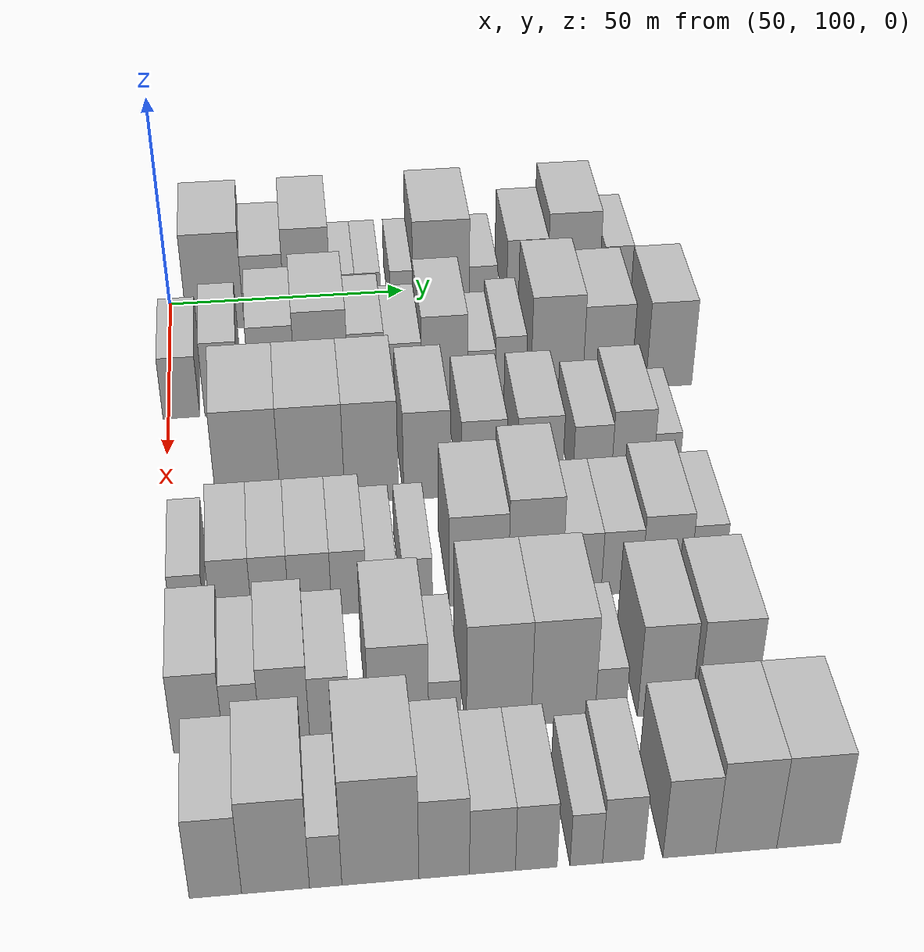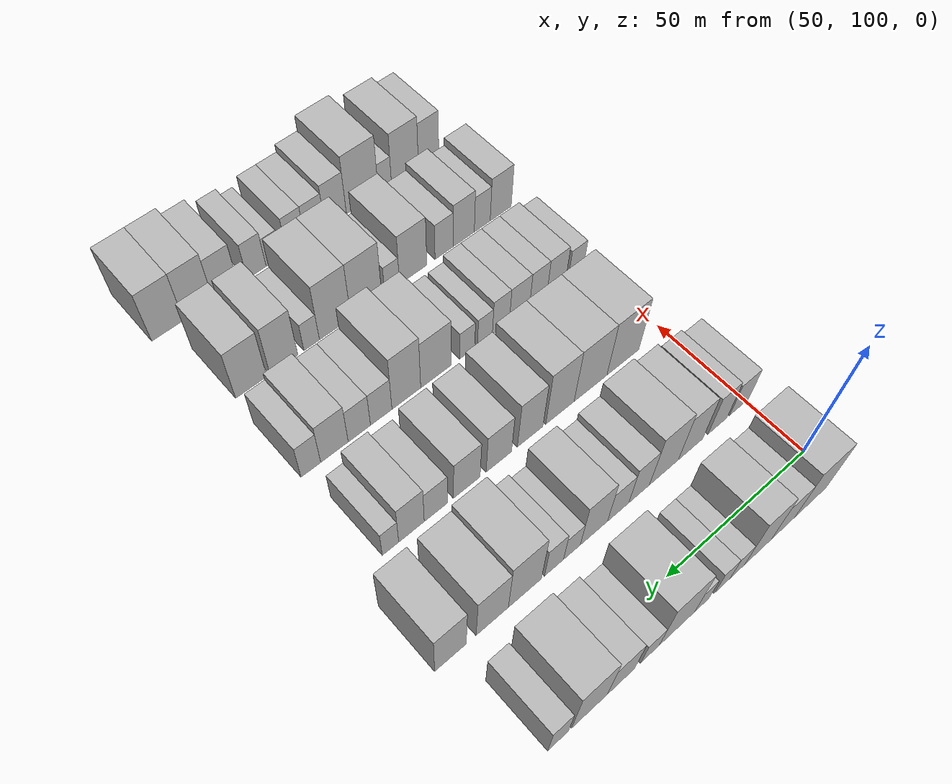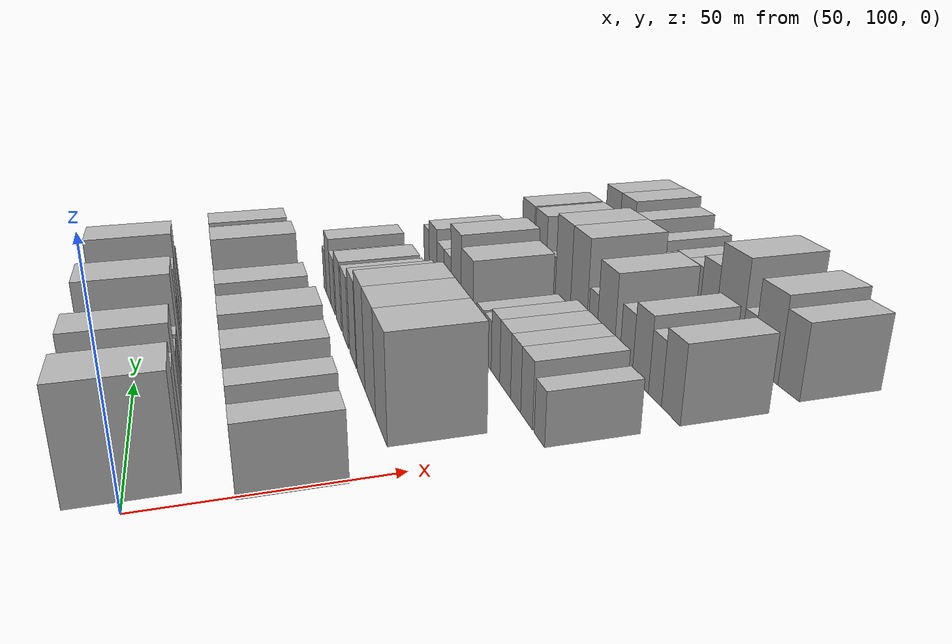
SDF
<sdf version="1.6">
 <world name="default">
  <model name="building_71">
   <static>1</static>
   <pose>50.0000 109.6856 0 0.000000 0.000000 0.000000</pose>
   <link name="link">
    <pose>0 0 12.00 0 0 0</pose>
    <collision name="collision"><geometry><box><size>20.0000 11.9349 24.0000</size></box></geometry></collision>
    <visual name="visual">
     <cast_shadows>0</cast_shadows>
     <geometry><box><size>20.0000 11.9349 24.0000</size></box></geometry>
     <material>
      <script>
       <uri>model://HANNAS_wall/materials/scripts</uri>
       <uri>model://HANNAS_wall/materials/textures</uri>
       <name>vrc/HANNAS_wall</name>
      </script>
     </material>
    </visual>
   </link>
  </model>
  <model name="building_72">
   <static>1</static>
   <pose>50.0000 119.9899 0 0.000000 0.000000 0.000000</pose>
   <link name="link">
    <pose>0 0 9.00 0 0 0</pose>
    <collision name="collision"><geometry><box><size>20.0000 8.6737 18.0000</size></box></geometry></collision>
    <visual name="visual">
     <cast_shadows>0</cast_shadows>
     <geometry><box><size>20.0000 8.6737 18.0000</size></box></geometry>
     <material>
      <script>
       <uri>model://HANNAS_wall/materials/scripts</uri>
       <uri>model://HANNAS_wall/materials/textures</uri>
       <name>vrc/HANNAS_wall</name>
      </script>
     </material>
    </visual>
   </link>
  </model>
  <model name="building_73">
   <static>1</static>
   <pose>50.0000 129.1986 0 0.000000 0.000000 0.000000</pose>
   <link name="link">
    <pose>0 0 12.00 0 0 0</pose>
    <collision name="collision"><geometry><box><size>20.0000 9.7438 24.0000</size></box></geometry></collision>
    <visual name="visual">
     <cast_shadows>0</cast_shadows>
     <geometry><box><size>20.0000 9.7438 24.0000</size></box></geometry>
     <material>
      <script>
       <uri>model://HANNAS_wall/materials/scripts</uri>
       <uri>model://HANNAS_wall/materials/textures</uri>
       <name>vrc/HANNAS_wall</name>
      </script>
     </material>
    </visual>
   </link>
  </model>
  <model name="building_74">
   <static>1</static>
   <pose>50.0000 136.6363 0 0.000000 0.000000 0.000000</pose>
   <link name="link">
    <pose>0 0 6.00 0 0 0</pose>
    <collision name="collision"><geometry><box><size>20.0000 5.1316 12.0000</size></box></geometry></collision>
    <visual name="visual">
     <cast_shadows>0</cast_shadows>
     <geometry><box><size>20.0000 5.1316 12.0000</size></box></geometry>
     <material>
      <script>
       <uri>model://HANNAS_wall/materials/scripts</uri>
       <uri>model://HANNAS_wall/materials/textures</uri>
       <name>vrc/HANNAS_wall</name>
      </script>
     </material>
    </visual>
   </link>
  </model>
  <model name="building_75">
   <static>1</static>
   <pose>50.0000 141.8897 0 0.000000 0.000000 0.000000</pose>
   <link name="link">
    <pose>0 0 6.00 0 0 0</pose>
    <collision name="collision"><geometry><box><size>20.0000 5.3753 12.0000</size></box></geometry></collision>
    <visual name="visual">
     <cast_shadows>0</cast_shadows>
     <geometry><box><size>20.0000 5.3753 12.0000</size></box></geometry>
     <material>
      <script>
       <uri>model://HANNAS_wall/materials/scripts</uri>
       <uri>model://HANNAS_wall/materials/textures</uri>
       <name>vrc/HANNAS_wall</name>
      </script>
     </material>
    </visual>
   </link>
  </model>
  <model name="building_76">
   <static>1</static>
   <pose>50.0000 148.9873 0 0.000000 0.000000 0.000000</pose>
   <link name="link">
    <pose>0 0 6.00 0 0 0</pose>
    <collision name="collision"><geometry><box><size>20.0000 4.8198 12.0000</size></box></geometry></collision>
    <visual name="visual">
     <cast_shadows>0</cast_shadows>
     <geometry><box><size>20.0000 4.8198 12.0000</size></box></geometry>
     <material>
      <script>
       <uri>model://HANNAS_wall/materials/scripts</uri>
       <uri>model://HANNAS_wall/materials/textures</uri>
       <name>vrc/HANNAS_wall</name>
      </script>
     </material>
    </visual>
   </link>
  </model>
  <model name="building_77">
   <static>1</static>
   <pose>50.0000 157.3818 0 0.000000 0.000000 0.000000</pose>
   <link name="link">
    <pose>0 0 12.00 0 0 0</pose>
    <collision name="collision"><geometry><box><size>20.0000 11.9692 24.0000</size></box></geometry></collision>
    <visual name="visual">
     <cast_shadows>0</cast_shadows>
     <geometry><box><size>20.0000 11.9692 24.0000</size></box></geometry>
     <material>
      <script>
       <uri>model://HANNAS_wall/materials/scripts</uri>
       <uri>model://HANNAS_wall/materials/textures</uri>
       <name>vrc/HANNAS_wall</name>
      </script>
     </material>
    </visual>
   </link>
  </model>
  <model name="building_78">
   <static>1</static>
   <pose>50.0000 166.3510 0 0.000000 0.000000 0.000000</pose>
   <link name="link">
    <pose>0 0 6.00 0 0 0</pose>
    <collision name="collision"><geometry><box><size>20.0000 5.9692 12.0000</size></box></geometry></collision>
    <visual name="visual">
     <cast_shadows>0</cast_shadows>
     <geometry><box><size>20.0000 5.9692 12.0000</size></box></geometry>
     <material>
      <script>
       <uri>model://HANNAS_wall/materials/scripts</uri>
       <uri>model://HANNAS_wall/materials/textures</uri>
       <name>vrc/HANNAS_wall</name>
      </script>
     </material>
    </visual>
   </link>
  </model>
  <model name="building_79">
   <static>1</static>
   <pose>50.0000 175.6624 0 0.000000 0.000000 0.000000</pose>
   <link name="link">
    <pose>0 0 9.00 0 0 0</pose>
    <collision name="collision"><geometry><box><size>20.0000 8.6537 18.0000</size></box></geometry></collision>
    <visual name="visual">
     <cast_shadows>0</cast_shadows>
     <geometry><box><size>20.0000 8.6537 18.0000</size></box></geometry>
     <material>
      <script>
       <uri>model://HANNAS_wall/materials/scripts</uri>
       <uri>model://HANNAS_wall/materials/textures</uri>
       <name>vrc/HANNAS_wall</name>
      </script>
     </material>
    </visual>
   </link>
  </model>
  <model name="building_80">
   <static>1</static>
   <pose>50.0000 185.5271 0 0.000000 0.000000 0.000000</pose>
   <link name="link">
    <pose>0 0 12.00 0 0 0</pose>
    <collision name="collision"><geometry><box><size>20.0000 11.0756 24.0000</size></box></geometry></collision>
    <visual name="visual">
     <cast_shadows>0</cast_shadows>
     <geometry><box><size>20.0000 11.0756 24.0000</size></box></geometry>
     <material>
      <script>
       <uri>model://HANNAS_wall/materials/scripts</uri>
       <uri>model://HANNAS_wall/materials/textures</uri>
       <name>vrc/HANNAS_wall</name>
      </script>
     </material>
    </visual>
   </link>
  </model>
  <model name="building_81">
   <static>1</static>
   <pose>50.0000 195.1369 0 0.000000 0.000000 0.000000</pose>
   <link name="link">
    <pose>0 0 7.50 0 0 0</pose>
    <collision name="collision"><geometry><box><size>20.0000 6.1441 15.0000</size></box></geometry></collision>
    <visual name="visual">
     <cast_shadows>0</cast_shadows>
     <geometry><box><size>20.0000 6.1441 15.0000</size></box></geometry>
     <material>
      <script>
       <uri>model://HANNAS_wall/materials/scripts</uri>
       <uri>model://HANNAS_wall/materials/textures</uri>
       <name>vrc/HANNAS_wall</name>
      </script>
     </material>
    </visual>
   </link>
  </model>
  <model name="building_184">
   <static>1</static>
   <pose>79.0000 102.6536 0 0.000000 0.000000 0.000000</pose>
   <link name="link">
    <pose>0 0 7.50 0 0 0</pose>
    <collision name="collision"><geometry><box><size>20.0000 7.2876 15.0000</size></box></geometry></collision>
    <visual name="visual">
     <cast_shadows>0</cast_shadows>
     <geometry><box><size>20.0000 7.2876 15.0000</size></box></geometry>
     <material>
      <script>
       <uri>model://HANNAS_wall/materials/scripts</uri>
       <uri>model://HANNAS_wall/materials/textures</uri>
       <name>vrc/HANNAS_wall</name>
      </script>
     </material>
    </visual>
   </link>
  </model>
  <model name="building_185">
   <static>1</static>
   <pose>79.0000 110.9046 0 0.000000 0.000000 0.000000</pose>
   <link name="link">
    <pose>0 0 9.00 0 0 0</pose>
    <collision name="collision"><geometry><box><size>20.0000 7.2145 18.0000</size></box></geometry></collision>
    <visual name="visual">
     <cast_shadows>0</cast_shadows>
     <geometry><box><size>20.0000 7.2145 18.0000</size></box></geometry>
     <material>
      <script>
       <uri>model://HANNAS_wall/materials/scripts</uri>
       <uri>model://HANNAS_wall/materials/textures</uri>
       <name>vrc/HANNAS_wall</name>
      </script>
     </material>
    </visual>
   </link>
  </model>
  <model name="building_186">
   <static>1</static>
   <pose>79.0000 121.0259 0 0.000000 0.000000 0.000000</pose>
   <link name="link">
    <pose>0 0 10.50 0 0 0</pose>
    <collision name="collision"><geometry><box><size>20.0000 9.0282 21.0000</size></box></geometry></collision>
    <visual name="visual">
     <cast_shadows>0</cast_shadows>
     <geometry><box><size>20.0000 9.0282 21.0000</size></box></geometry>
     <material>
      <script>
       <uri>model://HANNAS_wall/materials/scripts</uri>
       <uri>model://HANNAS_wall/materials/textures</uri>
       <name>vrc/HANNAS_wall</name>
      </script>
     </material>
    </visual>
   </link>
  </model>
  <model name="building_187">
   <static>1</static>
   <pose>79.0000 130.7511 0 0.000000 0.000000 0.000000</pose>
   <link name="link">
    <pose>0 0 12.00 0 0 0</pose>
    <collision name="collision"><geometry><box><size>20.0000 10.4222 24.0000</size></box></geometry></collision>
    <visual name="visual">
     <cast_shadows>0</cast_shadows>
     <geometry><box><size>20.0000 10.4222 24.0000</size></box></geometry>
     <material>
      <script>
       <uri>model://HANNAS_wall/materials/scripts</uri>
       <uri>model://HANNAS_wall/materials/textures</uri>
       <name>vrc/HANNAS_wall</name>
      </script>
     </material>
    </visual>
   </link>
  </model>
  <model name="building_188">
   <static>1</static>
   <pose>79.0000 139.6016 0 0.000000 0.000000 0.000000</pose>
   <link name="link">
    <pose>0 0 9.00 0 0 0</pose>
    <collision name="collision"><geometry><box><size>20.0000 7.2787 18.0000</size></box></geometry></collision>
    <visual name="visual">
     <cast_shadows>0</cast_shadows>
     <geometry><box><size>20.0000 7.2787 18.0000</size></box></geometry>
     <material>
      <script>
       <uri>model://HANNAS_wall/materials/scripts</uri>
       <uri>model://HANNAS_wall/materials/textures</uri>
       <name>vrc/HANNAS_wall</name>
      </script>
     </material>
    </visual>
   </link>
  </model>
  <model name="building_189">
   <static>1</static>
   <pose>79.0000 146.9142 0 0.000000 0.000000 0.000000</pose>
   <link name="link">
    <pose>0 0 7.50 0 0 0</pose>
    <collision name="collision"><geometry><box><size>20.0000 7.3466 15.0000</size></box></geometry></collision>
    <visual name="visual">
     <cast_shadows>0</cast_shadows>
     <geometry><box><size>20.0000 7.3466 15.0000</size></box></geometry>
     <material>
      <script>
       <uri>model://HANNAS_wall/materials/scripts</uri>
       <uri>model://HANNAS_wall/materials/textures</uri>
       <name>vrc/HANNAS_wall</name>
      </script>
     </material>
    </visual>
   </link>
  </model>
  <model name="building_190">
   <static>1</static>
   <pose>79.0000 155.1900 0 0.000000 0.000000 0.000000</pose>
   <link name="link">
    <pose>0 0 10.50 0 0 0</pose>
    <collision name="collision"><geometry><box><size>20.0000 9.2051 21.0000</size></box></geometry></collision>
    <visual name="visual">
     <cast_shadows>0</cast_shadows>
     <geometry><box><size>20.0000 9.2051 21.0000</size></box></geometry>
     <material>
      <script>
       <uri>model://HANNAS_wall/materials/scripts</uri>
       <uri>model://HANNAS_wall/materials/textures</uri>
       <name>vrc/HANNAS_wall</name>
      </script>
     </material>
    </visual>
   </link>
  </model>
  <model name="building_191">
   <static>1</static>
   <pose>79.0000 162.5959 0 0.000000 0.000000 0.000000</pose>
   <link name="link">
    <pose>0 0 6.00 0 0 0</pose>
    <collision name="collision"><geometry><box><size>20.0000 5.6066 12.0000</size></box></geometry></collision>
    <visual name="visual">
     <cast_shadows>0</cast_shadows>
     <geometry><box><size>20.0000 5.6066 12.0000</size></box></geometry>
     <material>
      <script>
       <uri>model://HANNAS_wall/materials/scripts</uri>
       <uri>model://HANNAS_wall/materials/textures</uri>
       <name>vrc/HANNAS_wall</name>
      </script>
     </material>
    </visual>
   </link>
  </model>
  <model name="building_192">
   <static>1</static>
   <pose>79.0000 168.4820 0 0.000000 0.000000 0.000000</pose>
   <link name="link">
    <pose>0 0 7.50 0 0 0</pose>
    <collision name="collision"><geometry><box><size>20.0000 6.1657 15.0000</size></box></geometry></collision>
    <visual name="visual">
     <cast_shadows>0</cast_shadows>
     <geometry><box><size>20.0000 6.1657 15.0000</size></box></geometry>
     <material>
      <script>
       <uri>model://HANNAS_wall/materials/scripts</uri>
       <uri>model://HANNAS_wall/materials/textures</uri>
       <name>vrc/HANNAS_wall</name>
      </script>
     </material>
    </visual>
   </link>
  </model>
  <model name="building_193">
   <static>1</static>
   <pose>79.0000 177.8361 0 0.000000 0.000000 0.000000</pose>
   <link name="link">
    <pose>0 0 12.00 0 0 0</pose>
    <collision name="collision"><geometry><box><size>20.0000 10.5424 24.0000</size></box></geometry></collision>
    <visual name="visual">
     <cast_shadows>0</cast_shadows>
     <geometry><box><size>20.0000 10.5424 24.0000</size></box></geometry>
     <material>
      <script>
       <uri>model://HANNAS_wall/materials/scripts</uri>
       <uri>model://HANNAS_wall/materials/textures</uri>
       <name>vrc/HANNAS_wall</name>
      </script>
     </material>
    </visual>
   </link>
  </model>
  <model name="building_194">
   <static>1</static>
   <pose>79.0000 188.0958 0 0.000000 0.000000 0.000000</pose>
   <link name="link">
    <pose>0 0 10.50 0 0 0</pose>
    <collision name="collision"><geometry><box><size>20.0000 9.9771 21.0000</size></box></geometry></collision>
    <visual name="visual">
     <cast_shadows>0</cast_shadows>
     <geometry><box><size>20.0000 9.9771 21.0000</size></box></geometry>
     <material>
      <script>
       <uri>model://HANNAS_wall/materials/scripts</uri>
       <uri>model://HANNAS_wall/materials/textures</uri>
       <name>vrc/HANNAS_wall</name>
      </script>
     </material>
    </visual>
   </link>
  </model>
  <model name="building_195">
   <static>1</static>
   <pose>79.0000 200.8078 0 0.000000 0.000000 0.000000</pose>
   <link name="link">
    <pose>0 0 10.50 0 0 0</pose>
    <collision name="collision"><geometry><box><size>20.0000 9.4468 21.0000</size></box></geometry></collision>
    <visual name="visual">
     <cast_shadows>0</cast_shadows>
     <geometry><box><size>20.0000 9.4468 21.0000</size></box></geometry>
     <material>
      <script>
       <uri>model://HANNAS_wall/materials/scripts</uri>
       <uri>model://HANNAS_wall/materials/textures</uri>
       <name>vrc/HANNAS_wall</name>
      </script>
     </material>
    </visual>
   </link>
  </model>
  <model name="building_296">
   <static>1</static>
   <pose>108.0000 115.4509 0 0.000000 0.000000 0.000000</pose>
   <link name="link">
    <pose>0 0 12.00 0 0 0</pose>
    <collision name="collision"><geometry><box><size>20.0000 11.9597 24.0000</size></box></geometry></collision>
    <visual name="visual">
     <cast_shadows>0</cast_shadows>
     <geometry><box><size>20.0000 11.9597 24.0000</size></box></geometry>
     <material>
      <script>
       <uri>model://HANNAS_wall/materials/scripts</uri>
       <uri>model://HANNAS_wall/materials/textures</uri>
       <name>vrc/HANNAS_wall</name>
      </script>
     </material>
    </visual>
   </link>
  </model>
  <model name="building_297">
   <static>1</static>
   <pose>108.0000 127.4221 0 0.000000 0.000000 0.000000</pose>
   <link name="link">
    <pose>0 0 12.00 0 0 0</pose>
    <collision name="collision"><geometry><box><size>20.0000 11.9827 24.0000</size></box></geometry></collision>
    <visual name="visual">
     <cast_shadows>0</cast_shadows>
     <geometry><box><size>20.0000 11.9827 24.0000</size></box></geometry>
     <material>
      <script>
       <uri>model://HANNAS_wall/materials/scripts</uri>
       <uri>model://HANNAS_wall/materials/textures</uri>
       <name>vrc/HANNAS_wall</name>
      </script>
     </material>
    </visual>
   </link>
  </model>
  <model name="building_298">
   <static>1</static>
   <pose>108.0000 138.4685 0 0.000000 0.000000 0.000000</pose>
   <link name="link">
    <pose>0 0 12.00 0 0 0</pose>
    <collision name="collision"><geometry><box><size>20.0000 10.1101 24.0000</size></box></geometry></collision>
    <visual name="visual">
     <cast_shadows>0</cast_shadows>
     <geometry><box><size>20.0000 10.1101 24.0000</size></box></geometry>
     <material>
      <script>
       <uri>model://HANNAS_wall/materials/scripts</uri>
       <uri>model://HANNAS_wall/materials/textures</uri>
       <name>vrc/HANNAS_wall</name>
      </script>
     </material>
    </visual>
   </link>
  </model>
  <model name="building_299">
   <static>1</static>
   <pose>108.0000 148.9373 0 0.000000 0.000000 0.000000</pose>
   <link name="link">
    <pose>0 0 10.50 0 0 0</pose>
    <collision name="collision"><geometry><box><size>20.0000 8.8275 21.0000</size></box></geometry></collision>
    <visual name="visual">
     <cast_shadows>0</cast_shadows>
     <geometry><box><size>20.0000 8.8275 21.0000</size></box></geometry>
     <material>
      <script>
       <uri>model://HANNAS_wall/materials/scripts</uri>
       <uri>model://HANNAS_wall/materials/textures</uri>
       <name>vrc/HANNAS_wall</name>
      </script>
     </material>
    </visual>
   </link>
  </model>
  <model name="building_300">
   <static>1</static>
   <pose>108.0000 159.6326 0 0.000000 0.000000 0.000000</pose>
   <link name="link">
    <pose>0 0 9.00 0 0 0</pose>
    <collision name="collision"><geometry><box><size>20.0000 8.5629 18.0000</size></box></geometry></collision>
    <visual name="visual">
     <cast_shadows>0</cast_shadows>
     <geometry><box><size>20.0000 8.5629 18.0000</size></box></geometry>
     <material>
      <script>
       <uri>model://HANNAS_wall/materials/scripts</uri>
       <uri>model://HANNAS_wall/materials/textures</uri>
       <name>vrc/HANNAS_wall</name>
      </script>
     </material>
    </visual>
   </link>
  </model>
  <model name="building_301">
   <static>1</static>
   <pose>108.0000 170.2703 0 0.000000 0.000000 0.000000</pose>
   <link name="link">
    <pose>0 0 9.00 0 0 0</pose>
    <collision name="collision"><geometry><box><size>20.0000 8.7124 18.0000</size></box></geometry></collision>
    <visual name="visual">
     <cast_shadows>0</cast_shadows>
     <geometry><box><size>20.0000 8.7124 18.0000</size></box></geometry>
     <material>
      <script>
       <uri>model://HANNAS_wall/materials/scripts</uri>
       <uri>model://HANNAS_wall/materials/textures</uri>
       <name>vrc/HANNAS_wall</name>
      </script>
     </material>
    </visual>
   </link>
  </model>
  <model name="building_302">
   <static>1</static>
   <pose>108.0000 180.3080 0 0.000000 0.000000 0.000000</pose>
   <link name="link">
    <pose>0 0 7.50 0 0 0</pose>
    <collision name="collision"><geometry><box><size>20.0000 7.3631 15.0000</size></box></geometry></collision>
    <visual name="visual">
     <cast_shadows>0</cast_shadows>
     <geometry><box><size>20.0000 7.3631 15.0000</size></box></geometry>
     <material>
      <script>
       <uri>model://HANNAS_wall/materials/scripts</uri>
       <uri>model://HANNAS_wall/materials/textures</uri>
       <name>vrc/HANNAS_wall</name>
      </script>
     </material>
    </visual>
   </link>
  </model>
  <model name="building_303">
   <static>1</static>
   <pose>108.0000 187.9890 0 0.000000 0.000000 0.000000</pose>
   <link name="link">
    <pose>0 0 9.00 0 0 0</pose>
    <collision name="collision"><geometry><box><size>20.0000 7.9990 18.0000</size></box></geometry></collision>
    <visual name="visual">
     <cast_shadows>0</cast_shadows>
     <geometry><box><size>20.0000 7.9990 18.0000</size></box></geometry>
     <material>
      <script>
       <uri>model://HANNAS_wall/materials/scripts</uri>
       <uri>model://HANNAS_wall/materials/textures</uri>
       <name>vrc/HANNAS_wall</name>
      </script>
     </material>
    </visual>
   </link>
  </model>
  <model name="building_304">
   <static>1</static>
   <pose>108.0000 194.5161 0 0.000000 0.000000 0.000000</pose>
   <link name="link">
    <pose>0 0 6.00 0 0 0</pose>
    <collision name="collision"><geometry><box><size>20.0000 5.0553 12.0000</size></box></geometry></collision>
    <visual name="visual">
     <cast_shadows>0</cast_shadows>
     <geometry><box><size>20.0000 5.0553 12.0000</size></box></geometry>
     <material>
      <script>
       <uri>model://HANNAS_wall/materials/scripts</uri>
       <uri>model://HANNAS_wall/materials/textures</uri>
       <name>vrc/HANNAS_wall</name>
      </script>
     </material>
    </visual>
   </link>
  </model>
  <model name="building_417">
   <static>1</static>
   <pose>137.0000 104.2799 0 0.000000 0.000000 0.000000</pose>
   <link name="link">
    <pose>0 0 6.00 0 0 0</pose>
    <collision name="collision"><geometry><box><size>20.0000 5.8760 12.0000</size></box></geometry></collision>
    <visual name="visual">
     <cast_shadows>0</cast_shadows>
     <geometry><box><size>20.0000 5.8760 12.0000</size></box></geometry>
     <material>
      <script>
       <uri>model://HANNAS_wall/materials/scripts</uri>
       <uri>model://HANNAS_wall/materials/textures</uri>
       <name>vrc/HANNAS_wall</name>
      </script>
     </material>
    </visual>
   </link>
  </model>
  <model name="building_418">
   <static>1</static>
   <pose>137.0000 111.8069 0 0.000000 0.000000 0.000000</pose>
   <link name="link">
    <pose>0 0 7.50 0 0 0</pose>
    <collision name="collision"><geometry><box><size>20.0000 7.1782 15.0000</size></box></geometry></collision>
    <visual name="visual">
     <cast_shadows>0</cast_shadows>
     <geometry><box><size>20.0000 7.1782 15.0000</size></box></geometry>
     <material>
      <script>
       <uri>model://HANNAS_wall/materials/scripts</uri>
       <uri>model://HANNAS_wall/materials/textures</uri>
       <name>vrc/HANNAS_wall</name>
      </script>
     </material>
    </visual>
   </link>
  </model>
  <model name="building_419">
   <static>1</static>
   <pose>137.0000 118.6700 0 0.000000 0.000000 0.000000</pose>
   <link name="link">
    <pose>0 0 7.50 0 0 0</pose>
    <collision name="collision"><geometry><box><size>20.0000 6.5479 15.0000</size></box></geometry></collision>
    <visual name="visual">
     <cast_shadows>0</cast_shadows>
     <geometry><box><size>20.0000 6.5479 15.0000</size></box></geometry>
     <material>
      <script>
       <uri>model://HANNAS_wall/materials/scripts</uri>
       <uri>model://HANNAS_wall/materials/textures</uri>
       <name>vrc/HANNAS_wall</name>
      </script>
     </material>
    </visual>
   </link>
  </model>
  <model name="building_420">
   <static>1</static>
   <pose>137.0000 125.6643 0 0.000000 0.000000 0.000000</pose>
   <link name="link">
    <pose>0 0 7.50 0 0 0</pose>
    <collision name="collision"><geometry><box><size>20.0000 7.4407 15.0000</size></box></geometry></collision>
    <visual name="visual">
     <cast_shadows>0</cast_shadows>
     <geometry><box><size>20.0000 7.4407 15.0000</size></box></geometry>
     <material>
      <script>
       <uri>model://HANNAS_wall/materials/scripts</uri>
       <uri>model://HANNAS_wall/materials/textures</uri>
       <name>vrc/HANNAS_wall</name>
      </script>
     </material>
    </visual>
   </link>
  </model>
  <model name="building_421">
   <static>1</static>
   <pose>137.0000 132.4712 0 0.000000 0.000000 0.000000</pose>
   <link name="link">
    <pose>0 0 7.50 0 0 0</pose>
    <collision name="collision"><geometry><box><size>20.0000 6.1730 15.0000</size></box></geometry></collision>
    <visual name="visual">
     <cast_shadows>0</cast_shadows>
     <geometry><box><size>20.0000 6.1730 15.0000</size></box></geometry>
     <material>
      <script>
       <uri>model://HANNAS_wall/materials/scripts</uri>
       <uri>model://HANNAS_wall/materials/textures</uri>
       <name>vrc/HANNAS_wall</name>
      </script>
     </material>
    </visual>
   </link>
  </model>
  <model name="building_422">
   <static>1</static>
   <pose>137.0000 138.2127 0 0.000000 0.000000 0.000000</pose>
   <link name="link">
    <pose>0 0 6.00 0 0 0</pose>
    <collision name="collision"><geometry><box><size>20.0000 5.3100 12.0000</size></box></geometry></collision>
    <visual name="visual">
     <cast_shadows>0</cast_shadows>
     <geometry><box><size>20.0000 5.3100 12.0000</size></box></geometry>
     <material>
      <script>
       <uri>model://HANNAS_wall/materials/scripts</uri>
       <uri>model://HANNAS_wall/materials/textures</uri>
       <name>vrc/HANNAS_wall</name>
      </script>
     </material>
    </visual>
   </link>
  </model>
  <model name="building_423">
   <static>1</static>
   <pose>137.0000 144.5084 0 0.000000 0.000000 0.000000</pose>
   <link name="link">
    <pose>0 0 6.00 0 0 0</pose>
    <collision name="collision"><geometry><box><size>20.0000 5.2813 12.0000</size></box></geometry></collision>
    <visual name="visual">
     <cast_shadows>0</cast_shadows>
     <geometry><box><size>20.0000 5.2813 12.0000</size></box></geometry>
     <material>
      <script>
       <uri>model://HANNAS_wall/materials/scripts</uri>
       <uri>model://HANNAS_wall/materials/textures</uri>
       <name>vrc/HANNAS_wall</name>
      </script>
     </material>
    </visual>
   </link>
  </model>
  <model name="building_424">
   <static>1</static>
   <pose>137.0000 155.3705 0 0.000000 0.000000 0.000000</pose>
   <link name="link">
    <pose>0 0 10.50 0 0 0</pose>
    <collision name="collision"><geometry><box><size>20.0000 10.4429 21.0000</size></box></geometry></collision>
    <visual name="visual">
     <cast_shadows>0</cast_shadows>
     <geometry><box><size>20.0000 10.4429 21.0000</size></box></geometry>
     <material>
      <script>
       <uri>model://HANNAS_wall/materials/scripts</uri>
       <uri>model://HANNAS_wall/materials/textures</uri>
       <name>vrc/HANNAS_wall</name>
      </script>
     </material>
    </visual>
   </link>
  </model>
  <model name="building_425">
   <static>1</static>
   <pose>137.0000 165.4151 0 0.000000 0.000000 0.000000</pose>
   <link name="link">
    <pose>0 0 12.00 0 0 0</pose>
    <collision name="collision"><geometry><box><size>20.0000 9.6463 24.0000</size></box></geometry></collision>
    <visual name="visual">
     <cast_shadows>0</cast_shadows>
     <geometry><box><size>20.0000 9.6463 24.0000</size></box></geometry>
     <material>
      <script>
       <uri>model://HANNAS_wall/materials/scripts</uri>
       <uri>model://HANNAS_wall/materials/textures</uri>
       <name>vrc/HANNAS_wall</name>
      </script>
     </material>
    </visual>
   </link>
  </model>
  <model name="building_426">
   <static>1</static>
   <pose>137.0000 173.7612 0 0.000000 0.000000 0.000000</pose>
   <link name="link">
    <pose>0 0 7.50 0 0 0</pose>
    <collision name="collision"><geometry><box><size>20.0000 7.0460 15.0000</size></box></geometry></collision>
    <visual name="visual">
     <cast_shadows>0</cast_shadows>
     <geometry><box><size>20.0000 7.0460 15.0000</size></box></geometry>
     <material>
      <script>
       <uri>model://HANNAS_wall/materials/scripts</uri>
       <uri>model://HANNAS_wall/materials/textures</uri>
       <name>vrc/HANNAS_wall</name>
      </script>
     </material>
    </visual>
   </link>
  </model>
  <model name="building_427">
   <static>1</static>
   <pose>137.0000 180.8817 0 0.000000 0.000000 0.000000</pose>
   <link name="link">
    <pose>0 0 7.50 0 0 0</pose>
    <collision name="collision"><geometry><box><size>20.0000 7.1949 15.0000</size></box></geometry></collision>
    <visual name="visual">
     <cast_shadows>0</cast_shadows>
     <geometry><box><size>20.0000 7.1949 15.0000</size></box></geometry>
     <material>
      <script>
       <uri>model://HANNAS_wall/materials/scripts</uri>
       <uri>model://HANNAS_wall/materials/textures</uri>
       <name>vrc/HANNAS_wall</name>
      </script>
     </material>
    </visual>
   </link>
  </model>
  <model name="building_428">
   <static>1</static>
   <pose>137.0000 188.8447 0 0.000000 0.000000 0.000000</pose>
   <link name="link">
    <pose>0 0 9.00 0 0 0</pose>
    <collision name="collision"><geometry><box><size>20.0000 8.7312 18.0000</size></box></geometry></collision>
    <visual name="visual">
     <cast_shadows>0</cast_shadows>
     <geometry><box><size>20.0000 8.7312 18.0000</size></box></geometry>
     <material>
      <script>
       <uri>model://HANNAS_wall/materials/scripts</uri>
       <uri>model://HANNAS_wall/materials/textures</uri>
       <name>vrc/HANNAS_wall</name>
      </script>
     </material>
    </visual>
   </link>
  </model>
  <model name="building_429">
   <static>1</static>
   <pose>137.0000 196.2786 0 0.000000 0.000000 0.000000</pose>
   <link name="link">
    <pose>0 0 7.50 0 0 0</pose>
    <collision name="collision"><geometry><box><size>20.0000 6.1366 15.0000</size></box></geometry></collision>
    <visual name="visual">
     <cast_shadows>0</cast_shadows>
     <geometry><box><size>20.0000 6.1366 15.0000</size></box></geometry>
     <material>
      <script>
       <uri>model://HANNAS_wall/materials/scripts</uri>
       <uri>model://HANNAS_wall/materials/textures</uri>
       <name>vrc/HANNAS_wall</name>
      </script>
     </material>
    </visual>
   </link>
  </model>
  <model name="building_537">
   <static>1</static>
   <pose>166.0000 106.0470 0 0.000000 0.000000 0.000000</pose>
   <link name="link">
    <pose>0 0 9.00 0 0 0</pose>
    <collision name="collision"><geometry><box><size>20.0000 8.1565 18.0000</size></box></geometry></collision>
    <visual name="visual">
     <cast_shadows>0</cast_shadows>
     <geometry><box><size>20.0000 8.1565 18.0000</size></box></geometry>
     <material>
      <script>
       <uri>model://HANNAS_wall/materials/scripts</uri>
       <uri>model://HANNAS_wall/materials/textures</uri>
       <name>vrc/HANNAS_wall</name>
      </script>
     </material>
    </visual>
   </link>
  </model>
  <model name="building_538">
   <static>1</static>
   <pose>166.0000 113.1544 0 0.000000 0.000000 0.000000</pose>
   <link name="link">
    <pose>0 0 7.50 0 0 0</pose>
    <collision name="collision"><geometry><box><size>20.0000 6.0583 15.0000</size></box></geometry></collision>
    <visual name="visual">
     <cast_shadows>0</cast_shadows>
     <geometry><box><size>20.0000 6.0583 15.0000</size></box></geometry>
     <material>
      <script>
       <uri>model://HANNAS_wall/materials/scripts</uri>
       <uri>model://HANNAS_wall/materials/textures</uri>
       <name>vrc/HANNAS_wall</name>
      </script>
     </material>
    </visual>
   </link>
  </model>
  <model name="building_539">
   <static>1</static>
   <pose>166.0000 120.1886 0 0.000000 0.000000 0.000000</pose>
   <link name="link">
    <pose>0 0 9.00 0 0 0</pose>
    <collision name="collision"><geometry><box><size>20.0000 8.0101 18.0000</size></box></geometry></collision>
    <visual name="visual">
     <cast_shadows>0</cast_shadows>
     <geometry><box><size>20.0000 8.0101 18.0000</size></box></geometry>
     <material>
      <script>
       <uri>model://HANNAS_wall/materials/scripts</uri>
       <uri>model://HANNAS_wall/materials/textures</uri>
       <name>vrc/HANNAS_wall</name>
      </script>
     </material>
    </visual>
   </link>
  </model>
  <model name="building_540">
   <static>1</static>
   <pose>166.0000 127.5304 0 0.000000 0.000000 0.000000</pose>
   <link name="link">
    <pose>0 0 7.50 0 0 0</pose>
    <collision name="collision"><geometry><box><size>20.0000 6.6736 15.0000</size></box></geometry></collision>
    <visual name="visual">
     <cast_shadows>0</cast_shadows>
     <geometry><box><size>20.0000 6.6736 15.0000</size></box></geometry>
     <material>
      <script>
       <uri>model://HANNAS_wall/materials/scripts</uri>
       <uri>model://HANNAS_wall/materials/textures</uri>
       <name>vrc/HANNAS_wall</name>
      </script>
     </material>
    </visual>
   </link>
  </model>
  <model name="building_541">
   <static>1</static>
   <pose>166.0000 138.8072 0 0.000000 0.000000 0.000000</pose>
   <link name="link">
    <pose>0 0 10.50 0 0 0</pose>
    <collision name="collision"><geometry><box><size>20.0000 9.8799 21.0000</size></box></geometry></collision>
    <visual name="visual">
     <cast_shadows>0</cast_shadows>
     <geometry><box><size>20.0000 9.8799 21.0000</size></box></geometry>
     <material>
      <script>
       <uri>model://HANNAS_wall/materials/scripts</uri>
       <uri>model://HANNAS_wall/materials/textures</uri>
       <name>vrc/HANNAS_wall</name>
      </script>
     </material>
    </visual>
   </link>
  </model>
  <model name="building_542">
   <static>1</static>
   <pose>166.0000 146.3704 0 0.000000 0.000000 0.000000</pose>
   <link name="link">
    <pose>0 0 6.00 0 0 0</pose>
    <collision name="collision"><geometry><box><size>20.0000 5.2466 12.0000</size></box></geometry></collision>
    <visual name="visual">
     <cast_shadows>0</cast_shadows>
     <geometry><box><size>20.0000 5.2466 12.0000</size></box></geometry>
     <material>
      <script>
       <uri>model://HANNAS_wall/materials/scripts</uri>
       <uri>model://HANNAS_wall/materials/textures</uri>
       <name>vrc/HANNAS_wall</name>
      </script>
     </material>
    </visual>
   </link>
  </model>
  <model name="building_543">
   <static>1</static>
   <pose>166.0000 155.3799 0 0.000000 0.000000 0.000000</pose>
   <link name="link">
    <pose>0 0 12.00 0 0 0</pose>
    <collision name="collision"><geometry><box><size>20.0000 10.7724 24.0000</size></box></geometry></collision>
    <visual name="visual">
     <cast_shadows>0</cast_shadows>
     <geometry><box><size>20.0000 10.7724 24.0000</size></box></geometry>
     <material>
      <script>
       <uri>model://HANNAS_wall/materials/scripts</uri>
       <uri>model://HANNAS_wall/materials/textures</uri>
       <name>vrc/HANNAS_wall</name>
      </script>
     </material>
    </visual>
   </link>
  </model>
  <model name="building_544">
   <static>1</static>
   <pose>166.0000 166.0963 0 0.000000 0.000000 0.000000</pose>
   <link name="link">
    <pose>0 0 12.00 0 0 0</pose>
    <collision name="collision"><geometry><box><size>20.0000 10.6604 24.0000</size></box></geometry></collision>
    <visual name="visual">
     <cast_shadows>0</cast_shadows>
     <geometry><box><size>20.0000 10.6604 24.0000</size></box></geometry>
     <material>
      <script>
       <uri>model://HANNAS_wall/materials/scripts</uri>
       <uri>model://HANNAS_wall/materials/textures</uri>
       <name>vrc/HANNAS_wall</name>
      </script>
     </material>
    </visual>
   </link>
  </model>
  <model name="building_545">
   <static>1</static>
   <pose>166.0000 174.0087 0 0.000000 0.000000 0.000000</pose>
   <link name="link">
    <pose>0 0 6.00 0 0 0</pose>
    <collision name="collision"><geometry><box><size>20.0000 5.1645 12.0000</size></box></geometry></collision>
    <visual name="visual">
     <cast_shadows>0</cast_shadows>
     <geometry><box><size>20.0000 5.1645 12.0000</size></box></geometry>
     <material>
      <script>
       <uri>model://HANNAS_wall/materials/scripts</uri>
       <uri>model://HANNAS_wall/materials/textures</uri>
       <name>vrc/HANNAS_wall</name>
      </script>
     </material>
    </visual>
   </link>
  </model>
  <model name="building_546">
   <static>1</static>
   <pose>166.0000 183.1367 0 0.000000 0.000000 0.000000</pose>
   <link name="link">
    <pose>0 0 10.50 0 0 0</pose>
    <collision name="collision"><geometry><box><size>20.0000 9.0916 21.0000</size></box></geometry></collision>
    <visual name="visual">
     <cast_shadows>0</cast_shadows>
     <geometry><box><size>20.0000 9.0916 21.0000</size></box></geometry>
     <material>
      <script>
       <uri>model://HANNAS_wall/materials/scripts</uri>
       <uri>model://HANNAS_wall/materials/textures</uri>
       <name>vrc/HANNAS_wall</name>
      </script>
     </material>
    </visual>
   </link>
  </model>
  <model name="building_547">
   <static>1</static>
   <pose>166.0000 193.6442 0 0.000000 0.000000 0.000000</pose>
   <link name="link">
    <pose>0 0 10.50 0 0 0</pose>
    <collision name="collision"><geometry><box><size>20.0000 9.9233 21.0000</size></box></geometry></collision>
    <visual name="visual">
     <cast_shadows>0</cast_shadows>
     <geometry><box><size>20.0000 9.9233 21.0000</size></box></geometry>
     <material>
      <script>
       <uri>model://HANNAS_wall/materials/scripts</uri>
       <uri>model://HANNAS_wall/materials/textures</uri>
       <name>vrc/HANNAS_wall</name>
      </script>
     </material>
    </visual>
   </link>
  </model>
  <model name="building_645">
   <static>1</static>
   <pose>195.0000 108.5336 0 0.000000 0.000000 0.000000</pose>
   <link name="link">
    <pose>0 0 9.00 0 0 0</pose>
    <collision name="collision"><geometry><box><size>20.0000 7.9087 18.0000</size></box></geometry></collision>
    <visual name="visual">
     <cast_shadows>0</cast_shadows>
     <geometry><box><size>20.0000 7.9087 18.0000</size></box></geometry>
     <material>
      <script>
       <uri>model://HANNAS_wall/materials/scripts</uri>
       <uri>model://HANNAS_wall/materials/textures</uri>
       <name>vrc/HANNAS_wall</name>
      </script>
     </material>
    </visual>
   </link>
  </model>
  <model name="building_646">
   <static>1</static>
   <pose>195.0000 117.6356 0 0.000000 0.000000 0.000000</pose>
   <link name="link">
    <pose>0 0 10.50 0 0 0</pose>
    <collision name="collision"><geometry><box><size>20.0000 10.2953 21.0000</size></box></geometry></collision>
    <visual name="visual">
     <cast_shadows>0</cast_shadows>
     <geometry><box><size>20.0000 10.2953 21.0000</size></box></geometry>
     <material>
      <script>
       <uri>model://HANNAS_wall/materials/scripts</uri>
       <uri>model://HANNAS_wall/materials/textures</uri>
       <name>vrc/HANNAS_wall</name>
      </script>
     </material>
    </visual>
   </link>
  </model>
  <model name="building_647">
   <static>1</static>
   <pose>195.0000 125.2480 0 0.000000 0.000000 0.000000</pose>
   <link name="link">
    <pose>0 0 6.00 0 0 0</pose>
    <collision name="collision"><geometry><box><size>20.0000 4.9295 12.0000</size></box></geometry></collision>
    <visual name="visual">
     <cast_shadows>0</cast_shadows>
     <geometry><box><size>20.0000 4.9295 12.0000</size></box></geometry>
     <material>
      <script>
       <uri>model://HANNAS_wall/materials/scripts</uri>
       <uri>model://HANNAS_wall/materials/textures</uri>
       <name>vrc/HANNAS_wall</name>
      </script>
     </material>
    </visual>
   </link>
  </model>
  <model name="building_648">
   <static>1</static>
   <pose>195.0000 133.6069 0 0.000000 0.000000 0.000000</pose>
   <link name="link">
    <pose>0 0 12.00 0 0 0</pose>
    <collision name="collision"><geometry><box><size>20.0000 11.7882 24.0000</size></box></geometry></collision>
    <visual name="visual">
     <cast_shadows>0</cast_shadows>
     <geometry><box><size>20.0000 11.7882 24.0000</size></box></geometry>
     <material>
      <script>
       <uri>model://HANNAS_wall/materials/scripts</uri>
       <uri>model://HANNAS_wall/materials/textures</uri>
       <name>vrc/HANNAS_wall</name>
      </script>
     </material>
    </visual>
   </link>
  </model>
  <model name="building_649">
   <static>1</static>
   <pose>195.0000 143.3881 0 0.000000 0.000000 0.000000</pose>
   <link name="link">
    <pose>0 0 9.00 0 0 0</pose>
    <collision name="collision"><geometry><box><size>20.0000 7.7742 18.0000</size></box></geometry></collision>
    <visual name="visual">
     <cast_shadows>0</cast_shadows>
     <geometry><box><size>20.0000 7.7742 18.0000</size></box></geometry>
     <material>
      <script>
       <uri>model://HANNAS_wall/materials/scripts</uri>
       <uri>model://HANNAS_wall/materials/textures</uri>
       <name>vrc/HANNAS_wall</name>
      </script>
     </material>
    </visual>
   </link>
  </model>
  <model name="building_650">
   <static>1</static>
   <pose>195.0000 150.8222 0 0.000000 0.000000 0.000000</pose>
   <link name="link">
    <pose>0 0 7.50 0 0 0</pose>
    <collision name="collision"><geometry><box><size>20.0000 7.0941 15.0000</size></box></geometry></collision>
    <visual name="visual">
     <cast_shadows>0</cast_shadows>
     <geometry><box><size>20.0000 7.0941 15.0000</size></box></geometry>
     <material>
      <script>
       <uri>model://HANNAS_wall/materials/scripts</uri>
       <uri>model://HANNAS_wall/materials/textures</uri>
       <name>vrc/HANNAS_wall</name>
      </script>
     </material>
    </visual>
   </link>
  </model>
  <model name="building_651">
   <static>1</static>
   <pose>195.0000 157.5982 0 0.000000 0.000000 0.000000</pose>
   <link name="link">
    <pose>0 0 7.50 0 0 0</pose>
    <collision name="collision"><geometry><box><size>20.0000 6.4578 15.0000</size></box></geometry></collision>
    <visual name="visual">
     <cast_shadows>0</cast_shadows>
     <geometry><box><size>20.0000 6.4578 15.0000</size></box></geometry>
     <material>
      <script>
       <uri>model://HANNAS_wall/materials/scripts</uri>
       <uri>model://HANNAS_wall/materials/textures</uri>
       <name>vrc/HANNAS_wall</name>
      </script>
     </material>
    </visual>
   </link>
  </model>
  <model name="building_652">
   <static>1</static>
   <pose>195.0000 165.3561 0 0.000000 0.000000 0.000000</pose>
   <link name="link">
    <pose>0 0 6.00 0 0 0</pose>
    <collision name="collision"><geometry><box><size>20.0000 5.0581 12.0000</size></box></geometry></collision>
    <visual name="visual">
     <cast_shadows>0</cast_shadows>
     <geometry><box><size>20.0000 5.0581 12.0000</size></box></geometry>
     <material>
      <script>
       <uri>model://HANNAS_wall/materials/scripts</uri>
       <uri>model://HANNAS_wall/materials/textures</uri>
       <name>vrc/HANNAS_wall</name>
      </script>
     </material>
    </visual>
   </link>
  </model>
  <model name="building_653">
   <static>1</static>
   <pose>195.0000 171.1076 0 0.000000 0.000000 0.000000</pose>
   <link name="link">
    <pose>0 0 7.50 0 0 0</pose>
    <collision name="collision"><geometry><box><size>20.0000 6.4450 15.0000</size></box></geometry></collision>
    <visual name="visual">
     <cast_shadows>0</cast_shadows>
     <geometry><box><size>20.0000 6.4450 15.0000</size></box></geometry>
     <material>
      <script>
       <uri>model://HANNAS_wall/materials/scripts</uri>
       <uri>model://HANNAS_wall/materials/textures</uri>
       <name>vrc/HANNAS_wall</name>
      </script>
     </material>
    </visual>
   </link>
  </model>
  <model name="building_654">
   <static>1</static>
   <pose>195.0000 181.4465 0 0.000000 0.000000 0.000000</pose>
   <link name="link">
    <pose>0 0 9.00 0 0 0</pose>
    <collision name="collision"><geometry><box><size>20.0000 8.2327 18.0000</size></box></geometry></collision>
    <visual name="visual">
     <cast_shadows>0</cast_shadows>
     <geometry><box><size>20.0000 8.2327 18.0000</size></box></geometry>
     <material>
      <script>
       <uri>model://HANNAS_wall/materials/scripts</uri>
       <uri>model://HANNAS_wall/materials/textures</uri>
       <name>vrc/HANNAS_wall</name>
      </script>
     </material>
    </visual>
   </link>
  </model>
  <model name="building_655">
   <static>1</static>
   <pose>195.0000 190.4068 0 0.000000 0.000000 0.000000</pose>
   <link name="link">
    <pose>0 0 10.50 0 0 0</pose>
    <collision name="collision"><geometry><box><size>20.0000 9.6880 21.0000</size></box></geometry></collision>
    <visual name="visual">
     <cast_shadows>0</cast_shadows>
     <geometry><box><size>20.0000 9.6880 21.0000</size></box></geometry>
     <material>
      <script>
       <uri>model://HANNAS_wall/materials/scripts</uri>
       <uri>model://HANNAS_wall/materials/textures</uri>
       <name>vrc/HANNAS_wall</name>
      </script>
     </material>
    </visual>
   </link>
  </model>
  <model name="building_656">
   <static>1</static>
   <pose>195.0000 200.3323 0 0.000000 0.000000 0.000000</pose>
   <link name="link">
    <pose>0 0 10.50 0 0 0</pose>
    <collision name="collision"><geometry><box><size>20.0000 10.1630 21.0000</size></box></geometry></collision>
    <visual name="visual">
     <cast_shadows>0</cast_shadows>
     <geometry><box><size>20.0000 10.1630 21.0000</size></box></geometry>
     <material>
      <script>
       <uri>model://HANNAS_wall/materials/scripts</uri>
       <uri>model://HANNAS_wall/materials/textures</uri>
       <name>vrc/HANNAS_wall</name>
      </script>
     </material>
    </visual>
   </link>
  </model>
 </world>
</sdf>
